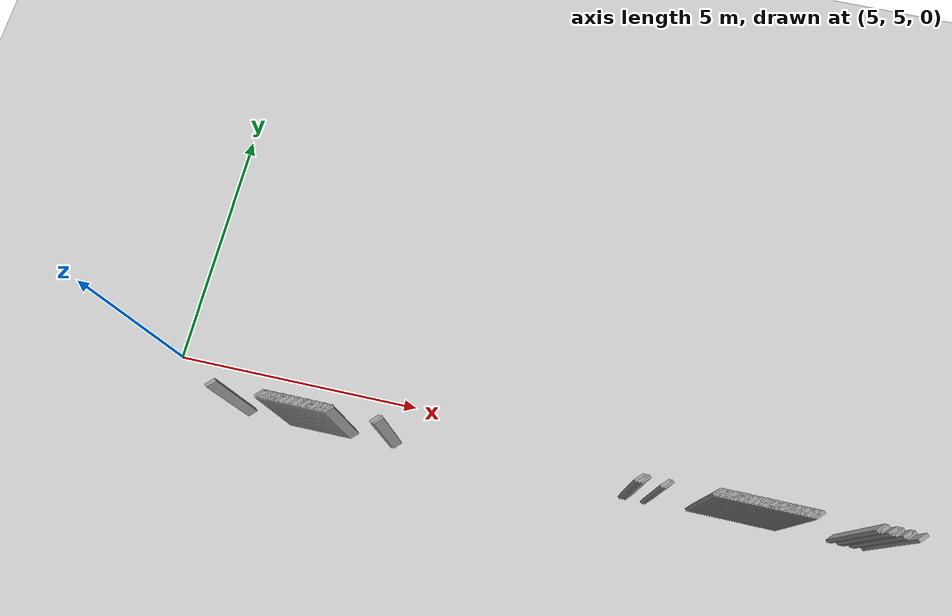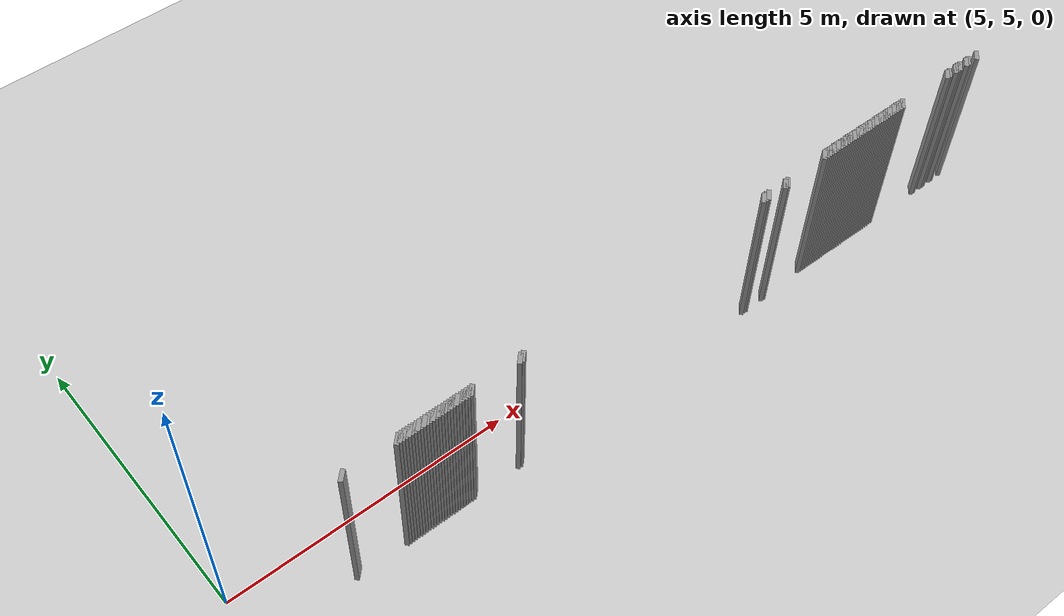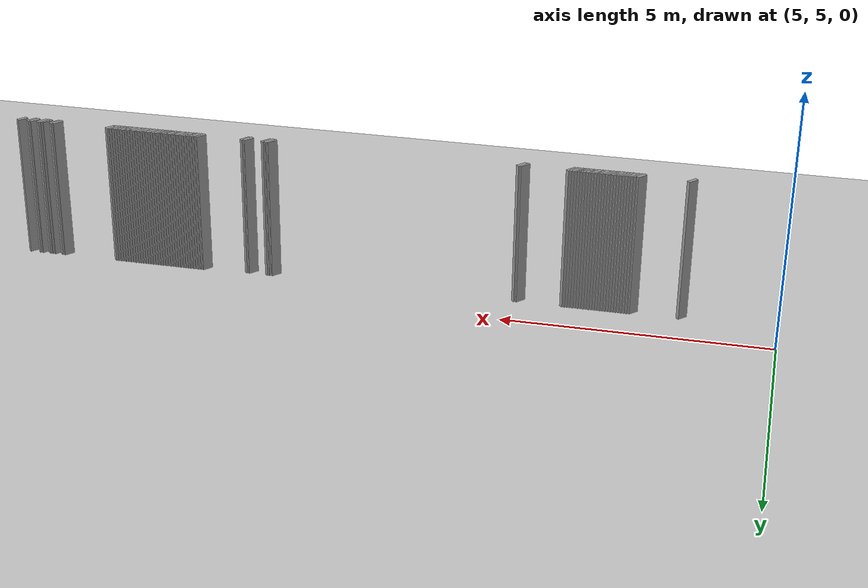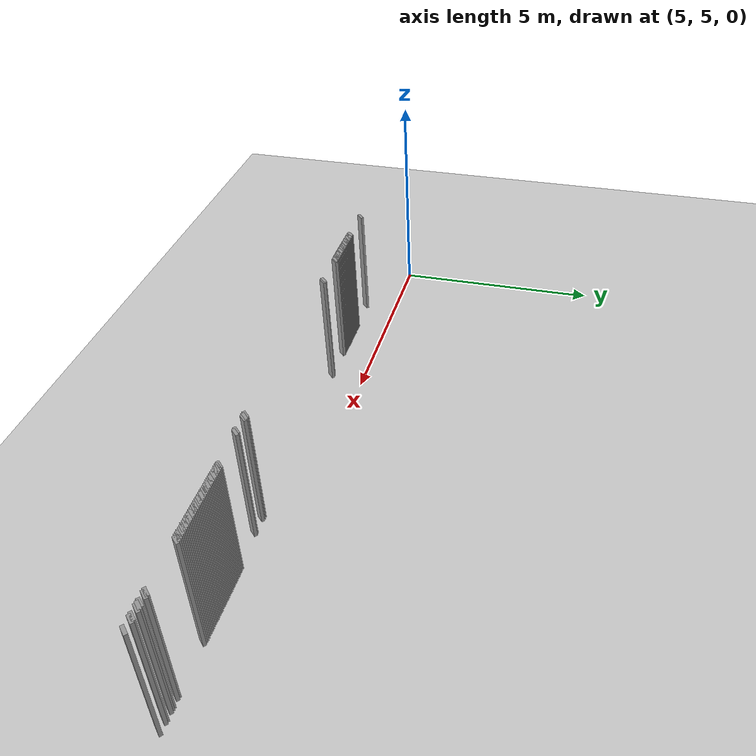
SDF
<sdf version="1.5">
 <world name="default">
  <include><uri>model://ground_plane</uri></include>
  <include><uri>model://sun</uri></include>
  <model name="grey_wall_2333">
   <static>1</static>
   <link name="link">
    <pose>15.8 4.25  1.4 0 0 -0.785398163397</pose>
    <collision name="collision"><geometry><box><size>0.0707106781187 .2  2.8</size></box></geometry></collision>
    <visual name="visual">
     <cast_shadows>0</cast_shadows>
     <geometry><box><size>0.0707106781187 .2  2.8</size></box></geometry>
     <material>
      <script>
       <uri>model://grey_wall/materials/scripts</uri>
       <uri>model://grey_wall/materials/textures</uri>
       <name>vrc/grey_wall</name>
      </script>
     </material>
    </visual>
   </link>
  </model>
  <model name="grey_wall_2334">
   <static>1</static>
   <link name="link">
    <pose>15.85 4.25  1.4 0 0 -0.785398163397</pose>
    <collision name="collision"><geometry><box><size>0.0707106781187 .2  2.8</size></box></geometry></collision>
    <visual name="visual">
     <cast_shadows>0</cast_shadows>
     <geometry><box><size>0.0707106781187 .2  2.8</size></box></geometry>
     <material>
      <script>
       <uri>model://grey_wall/materials/scripts</uri>
       <uri>model://grey_wall/materials/textures</uri>
       <name>vrc/grey_wall</name>
      </script>
     </material>
    </visual>
   </link>
  </model>
  <model name="grey_wall_2335">
   <static>1</static>
   <link name="link">
    <pose>15.9 4.25  1.4 0 0 -0.785398163397</pose>
    <collision name="collision"><geometry><box><size>0.0707106781187 .2  2.8</size></box></geometry></collision>
    <visual name="visual">
     <cast_shadows>0</cast_shadows>
     <geometry><box><size>0.0707106781187 .2  2.8</size></box></geometry>
     <material>
      <script>
       <uri>model://grey_wall/materials/scripts</uri>
       <uri>model://grey_wall/materials/textures</uri>
       <name>vrc/grey_wall</name>
      </script>
     </material>
    </visual>
   </link>
  </model>
  <model name="grey_wall_2336">
   <static>1</static>
   <link name="link">
    <pose>15.95 4.25  1.4 0 0 -0.785398163397</pose>
    <collision name="collision"><geometry><box><size>0.0707106781187 .2  2.8</size></box></geometry></collision>
    <visual name="visual">
     <cast_shadows>0</cast_shadows>
     <geometry><box><size>0.0707106781187 .2  2.8</size></box></geometry>
     <material>
      <script>
       <uri>model://grey_wall/materials/scripts</uri>
       <uri>model://grey_wall/materials/textures</uri>
       <name>vrc/grey_wall</name>
      </script>
     </material>
    </visual>
   </link>
  </model>
  <model name="grey_wall_2337">
   <static>1</static>
   <link name="link">
    <pose>16.0 4.25  1.4 0 0 -0.785398163397</pose>
    <collision name="collision"><geometry><box><size>0.0707106781187 .2  2.8</size></box></geometry></collision>
    <visual name="visual">
     <cast_shadows>0</cast_shadows>
     <geometry><box><size>0.0707106781187 .2  2.8</size></box></geometry>
     <material>
      <script>
       <uri>model://grey_wall/materials/scripts</uri>
       <uri>model://grey_wall/materials/textures</uri>
       <name>vrc/grey_wall</name>
      </script>
     </material>
    </visual>
   </link>
  </model>
  <model name="grey_wall_2338">
   <static>1</static>
   <link name="link">
    <pose>16.05 4.25  1.4 0 0 -0.785398163397</pose>
    <collision name="collision"><geometry><box><size>0.0707106781187 .2  2.8</size></box></geometry></collision>
    <visual name="visual">
     <cast_shadows>0</cast_shadows>
     <geometry><box><size>0.0707106781187 .2  2.8</size></box></geometry>
     <material>
      <script>
       <uri>model://grey_wall/materials/scripts</uri>
       <uri>model://grey_wall/materials/textures</uri>
       <name>vrc/grey_wall</name>
      </script>
     </material>
    </visual>
   </link>
  </model>
  <model name="grey_wall_2339">
   <static>1</static>
   <link name="link">
    <pose>16.1 4.25  1.4 0 0 -0.785398163397</pose>
    <collision name="collision"><geometry><box><size>0.0707106781187 .2  2.8</size></box></geometry></collision>
    <visual name="visual">
     <cast_shadows>0</cast_shadows>
     <geometry><box><size>0.0707106781187 .2  2.8</size></box></geometry>
     <material>
      <script>
       <uri>model://grey_wall/materials/scripts</uri>
       <uri>model://grey_wall/materials/textures</uri>
       <name>vrc/grey_wall</name>
      </script>
     </material>
    </visual>
   </link>
  </model>
  <model name="grey_wall_2340">
   <static>1</static>
   <link name="link">
    <pose>16.15 4.25  1.4 0 0 -0.785398163397</pose>
    <collision name="collision"><geometry><box><size>0.0707106781187 .2  2.8</size></box></geometry></collision>
    <visual name="visual">
     <cast_shadows>0</cast_shadows>
     <geometry><box><size>0.0707106781187 .2  2.8</size></box></geometry>
     <material>
      <script>
       <uri>model://grey_wall/materials/scripts</uri>
       <uri>model://grey_wall/materials/textures</uri>
       <name>vrc/grey_wall</name>
      </script>
     </material>
    </visual>
   </link>
  </model>
  <model name="grey_wall_2341">
   <static>1</static>
   <link name="link">
    <pose>16.2 4.25  1.4 0 0 -0.785398163397</pose>
    <collision name="collision"><geometry><box><size>0.0707106781187 .2  2.8</size></box></geometry></collision>
    <visual name="visual">
     <cast_shadows>0</cast_shadows>
     <geometry><box><size>0.0707106781187 .2  2.8</size></box></geometry>
     <material>
      <script>
       <uri>model://grey_wall/materials/scripts</uri>
       <uri>model://grey_wall/materials/textures</uri>
       <name>vrc/grey_wall</name>
      </script>
     </material>
    </visual>
   </link>
  </model>
  <model name="grey_wall_2342">
   <static>1</static>
   <link name="link">
    <pose>16.25 4.25  1.4 0 0 -0.785398163397</pose>
    <collision name="collision"><geometry><box><size>0.0707106781187 .2  2.8</size></box></geometry></collision>
    <visual name="visual">
     <cast_shadows>0</cast_shadows>
     <geometry><box><size>0.0707106781187 .2  2.8</size></box></geometry>
     <material>
      <script>
       <uri>model://grey_wall/materials/scripts</uri>
       <uri>model://grey_wall/materials/textures</uri>
       <name>vrc/grey_wall</name>
      </script>
     </material>
    </visual>
   </link>
  </model>
  <model name="grey_wall_2343">
   <static>1</static>
   <link name="link">
    <pose>16.3 4.25  1.4 0 0 -0.785398163397</pose>
    <collision name="collision"><geometry><box><size>0.0707106781187 .2  2.8</size></box></geometry></collision>
    <visual name="visual">
     <cast_shadows>0</cast_shadows>
     <geometry><box><size>0.0707106781187 .2  2.8</size></box></geometry>
     <material>
      <script>
       <uri>model://grey_wall/materials/scripts</uri>
       <uri>model://grey_wall/materials/textures</uri>
       <name>vrc/grey_wall</name>
      </script>
     </material>
    </visual>
   </link>
  </model>
  <model name="grey_wall_2344">
   <static>1</static>
   <link name="link">
    <pose>16.35 4.25  1.4 0 0 -0.785398163397</pose>
    <collision name="collision"><geometry><box><size>0.0707106781187 .2  2.8</size></box></geometry></collision>
    <visual name="visual">
     <cast_shadows>0</cast_shadows>
     <geometry><box><size>0.0707106781187 .2  2.8</size></box></geometry>
     <material>
      <script>
       <uri>model://grey_wall/materials/scripts</uri>
       <uri>model://grey_wall/materials/textures</uri>
       <name>vrc/grey_wall</name>
      </script>
     </material>
    </visual>
   </link>
  </model>
  <model name="grey_wall_2345">
   <static>1</static>
   <link name="link">
    <pose>16.4 4.25  1.4 0 0 -0.785398163397</pose>
    <collision name="collision"><geometry><box><size>0.0707106781187 .2  2.8</size></box></geometry></collision>
    <visual name="visual">
     <cast_shadows>0</cast_shadows>
     <geometry><box><size>0.0707106781187 .2  2.8</size></box></geometry>
     <material>
      <script>
       <uri>model://grey_wall/materials/scripts</uri>
       <uri>model://grey_wall/materials/textures</uri>
       <name>vrc/grey_wall</name>
      </script>
     </material>
    </visual>
   </link>
  </model>
  <model name="grey_wall_2346">
   <static>1</static>
   <link name="link">
    <pose>16.45 4.25  1.4 0 0 -0.785398163397</pose>
    <collision name="collision"><geometry><box><size>0.0707106781187 .2  2.8</size></box></geometry></collision>
    <visual name="visual">
     <cast_shadows>0</cast_shadows>
     <geometry><box><size>0.0707106781187 .2  2.8</size></box></geometry>
     <material>
      <script>
       <uri>model://grey_wall/materials/scripts</uri>
       <uri>model://grey_wall/materials/textures</uri>
       <name>vrc/grey_wall</name>
      </script>
     </material>
    </visual>
   </link>
  </model>
  <model name="grey_wall_2347">
   <static>1</static>
   <link name="link">
    <pose>16.5 4.25  1.4 0 0 -0.785398163397</pose>
    <collision name="collision"><geometry><box><size>0.0707106781187 .2  2.8</size></box></geometry></collision>
    <visual name="visual">
     <cast_shadows>0</cast_shadows>
     <geometry><box><size>0.0707106781187 .2  2.8</size></box></geometry>
     <material>
      <script>
       <uri>model://grey_wall/materials/scripts</uri>
       <uri>model://grey_wall/materials/textures</uri>
       <name>vrc/grey_wall</name>
      </script>
     </material>
    </visual>
   </link>
  </model>
  <model name="grey_wall_2348">
   <static>1</static>
   <link name="link">
    <pose>16.55 4.25  1.4 0 0 -0.785398163397</pose>
    <collision name="collision"><geometry><box><size>0.0707106781187 .2  2.8</size></box></geometry></collision>
    <visual name="visual">
     <cast_shadows>0</cast_shadows>
     <geometry><box><size>0.0707106781187 .2  2.8</size></box></geometry>
     <material>
      <script>
       <uri>model://grey_wall/materials/scripts</uri>
       <uri>model://grey_wall/materials/textures</uri>
       <name>vrc/grey_wall</name>
      </script>
     </material>
    </visual>
   </link>
  </model>
  <model name="grey_wall_2349">
   <static>1</static>
   <link name="link">
    <pose>16.6 4.25  1.4 0 0 -0.785398163397</pose>
    <collision name="collision"><geometry><box><size>0.0707106781187 .2  2.8</size></box></geometry></collision>
    <visual name="visual">
     <cast_shadows>0</cast_shadows>
     <geometry><box><size>0.0707106781187 .2  2.8</size></box></geometry>
     <material>
      <script>
       <uri>model://grey_wall/materials/scripts</uri>
       <uri>model://grey_wall/materials/textures</uri>
       <name>vrc/grey_wall</name>
      </script>
     </material>
    </visual>
   </link>
  </model>
  <model name="grey_wall_2350">
   <static>1</static>
   <link name="link">
    <pose>16.65 4.25  1.4 0 0 -0.785398163397</pose>
    <collision name="collision"><geometry><box><size>0.0707106781187 .2  2.8</size></box></geometry></collision>
    <visual name="visual">
     <cast_shadows>0</cast_shadows>
     <geometry><box><size>0.0707106781187 .2  2.8</size></box></geometry>
     <material>
      <script>
       <uri>model://grey_wall/materials/scripts</uri>
       <uri>model://grey_wall/materials/textures</uri>
       <name>vrc/grey_wall</name>
      </script>
     </material>
    </visual>
   </link>
  </model>
  <model name="grey_wall_2351">
   <static>1</static>
   <link name="link">
    <pose>16.7 4.25  1.4 0 0 -0.785398163397</pose>
    <collision name="collision"><geometry><box><size>0.0707106781187 .2  2.8</size></box></geometry></collision>
    <visual name="visual">
     <cast_shadows>0</cast_shadows>
     <geometry><box><size>0.0707106781187 .2  2.8</size></box></geometry>
     <material>
      <script>
       <uri>model://grey_wall/materials/scripts</uri>
       <uri>model://grey_wall/materials/textures</uri>
       <name>vrc/grey_wall</name>
      </script>
     </material>
    </visual>
   </link>
  </model>
  <model name="grey_wall_2352">
   <static>1</static>
   <link name="link">
    <pose>16.75 4.25  1.4 0 0 -0.785398163397</pose>
    <collision name="collision"><geometry><box><size>0.0707106781187 .2  2.8</size></box></geometry></collision>
    <visual name="visual">
     <cast_shadows>0</cast_shadows>
     <geometry><box><size>0.0707106781187 .2  2.8</size></box></geometry>
     <material>
      <script>
       <uri>model://grey_wall/materials/scripts</uri>
       <uri>model://grey_wall/materials/textures</uri>
       <name>vrc/grey_wall</name>
      </script>
     </material>
    </visual>
   </link>
  </model>
  <model name="grey_wall_2353">
   <static>1</static>
   <link name="link">
    <pose>16.8 4.25  1.4 0 0 -0.785398163397</pose>
    <collision name="collision"><geometry><box><size>0.0707106781187 .2  2.8</size></box></geometry></collision>
    <visual name="visual">
     <cast_shadows>0</cast_shadows>
     <geometry><box><size>0.0707106781187 .2  2.8</size></box></geometry>
     <material>
      <script>
       <uri>model://grey_wall/materials/scripts</uri>
       <uri>model://grey_wall/materials/textures</uri>
       <name>vrc/grey_wall</name>
      </script>
     </material>
    </visual>
   </link>
  </model>
  <model name="grey_wall_2354">
   <static>1</static>
   <link name="link">
    <pose>16.85 4.25  1.4 0 0 -0.785398163397</pose>
    <collision name="collision"><geometry><box><size>0.0707106781187 .2  2.8</size></box></geometry></collision>
    <visual name="visual">
     <cast_shadows>0</cast_shadows>
     <geometry><box><size>0.0707106781187 .2  2.8</size></box></geometry>
     <material>
      <script>
       <uri>model://grey_wall/materials/scripts</uri>
       <uri>model://grey_wall/materials/textures</uri>
       <name>vrc/grey_wall</name>
      </script>
     </material>
    </visual>
   </link>
  </model>
  <model name="grey_wall_2355">
   <static>1</static>
   <link name="link">
    <pose>16.9 4.25  1.4 0 0 -0.785398163397</pose>
    <collision name="collision"><geometry><box><size>0.0707106781187 .2  2.8</size></box></geometry></collision>
    <visual name="visual">
     <cast_shadows>0</cast_shadows>
     <geometry><box><size>0.0707106781187 .2  2.8</size></box></geometry>
     <material>
      <script>
       <uri>model://grey_wall/materials/scripts</uri>
       <uri>model://grey_wall/materials/textures</uri>
       <name>vrc/grey_wall</name>
      </script>
     </material>
    </visual>
   </link>
  </model>
  <model name="grey_wall_2356">
   <static>1</static>
   <link name="link">
    <pose>16.95 4.25  1.4 0 0 -0.785398163397</pose>
    <collision name="collision"><geometry><box><size>0.0707106781187 .2  2.8</size></box></geometry></collision>
    <visual name="visual">
     <cast_shadows>0</cast_shadows>
     <geometry><box><size>0.0707106781187 .2  2.8</size></box></geometry>
     <material>
      <script>
       <uri>model://grey_wall/materials/scripts</uri>
       <uri>model://grey_wall/materials/textures</uri>
       <name>vrc/grey_wall</name>
      </script>
     </material>
    </visual>
   </link>
  </model>
  <model name="grey_wall_2357">
   <static>1</static>
   <link name="link">
    <pose>17.0 4.25  1.4 0 0 -0.785398163397</pose>
    <collision name="collision"><geometry><box><size>0.0707106781187 .2  2.8</size></box></geometry></collision>
    <visual name="visual">
     <cast_shadows>0</cast_shadows>
     <geometry><box><size>0.0707106781187 .2  2.8</size></box></geometry>
     <material>
      <script>
       <uri>model://grey_wall/materials/scripts</uri>
       <uri>model://grey_wall/materials/textures</uri>
       <name>vrc/grey_wall</name>
      </script>
     </material>
    </visual>
   </link>
  </model>
  <model name="grey_wall_2358">
   <static>1</static>
   <link name="link">
    <pose>17.05 4.25  1.4 0 0 -0.785398163397</pose>
    <collision name="collision"><geometry><box><size>0.0707106781187 .2  2.8</size></box></geometry></collision>
    <visual name="visual">
     <cast_shadows>0</cast_shadows>
     <geometry><box><size>0.0707106781187 .2  2.8</size></box></geometry>
     <material>
      <script>
       <uri>model://grey_wall/materials/scripts</uri>
       <uri>model://grey_wall/materials/textures</uri>
       <name>vrc/grey_wall</name>
      </script>
     </material>
    </visual>
   </link>
  </model>
  <model name="grey_wall_2359">
   <static>1</static>
   <link name="link">
    <pose>17.1 4.25  1.4 0 0 -0.785398163397</pose>
    <collision name="collision"><geometry><box><size>0.0707106781187 .2  2.8</size></box></geometry></collision>
    <visual name="visual">
     <cast_shadows>0</cast_shadows>
     <geometry><box><size>0.0707106781187 .2  2.8</size></box></geometry>
     <material>
      <script>
       <uri>model://grey_wall/materials/scripts</uri>
       <uri>model://grey_wall/materials/textures</uri>
       <name>vrc/grey_wall</name>
      </script>
     </material>
    </visual>
   </link>
  </model>
  <model name="grey_wall_2360">
   <static>1</static>
   <link name="link">
    <pose>17.15 4.25  1.4 0 0 -0.785398163397</pose>
    <collision name="collision"><geometry><box><size>0.0707106781187 .2  2.8</size></box></geometry></collision>
    <visual name="visual">
     <cast_shadows>0</cast_shadows>
     <geometry><box><size>0.0707106781187 .2  2.8</size></box></geometry>
     <material>
      <script>
       <uri>model://grey_wall/materials/scripts</uri>
       <uri>model://grey_wall/materials/textures</uri>
       <name>vrc/grey_wall</name>
      </script>
     </material>
    </visual>
   </link>
  </model>
  <model name="grey_wall_2361">
   <static>1</static>
   <link name="link">
    <pose>17.2 4.25  1.4 0 0 -0.785398163397</pose>
    <collision name="collision"><geometry><box><size>0.0707106781187 .2  2.8</size></box></geometry></collision>
    <visual name="visual">
     <cast_shadows>0</cast_shadows>
     <geometry><box><size>0.0707106781187 .2  2.8</size></box></geometry>
     <material>
      <script>
       <uri>model://grey_wall/materials/scripts</uri>
       <uri>model://grey_wall/materials/textures</uri>
       <name>vrc/grey_wall</name>
      </script>
     </material>
    </visual>
   </link>
  </model>
  <model name="grey_wall_2362">
   <static>1</static>
   <link name="link">
    <pose>17.25 4.25  1.4 0 0 -0.785398163397</pose>
    <collision name="collision"><geometry><box><size>0.0707106781187 .2  2.8</size></box></geometry></collision>
    <visual name="visual">
     <cast_shadows>0</cast_shadows>
     <geometry><box><size>0.0707106781187 .2  2.8</size></box></geometry>
     <material>
      <script>
       <uri>model://grey_wall/materials/scripts</uri>
       <uri>model://grey_wall/materials/textures</uri>
       <name>vrc/grey_wall</name>
      </script>
     </material>
    </visual>
   </link>
  </model>
  <model name="grey_wall_2363">
   <static>1</static>
   <link name="link">
    <pose>17.3 4.25  1.4 0 0 -0.785398163397</pose>
    <collision name="collision"><geometry><box><size>0.0707106781187 .2  2.8</size></box></geometry></collision>
    <visual name="visual">
     <cast_shadows>0</cast_shadows>
     <geometry><box><size>0.0707106781187 .2  2.8</size></box></geometry>
     <material>
      <script>
       <uri>model://grey_wall/materials/scripts</uri>
       <uri>model://grey_wall/materials/textures</uri>
       <name>vrc/grey_wall</name>
      </script>
     </material>
    </visual>
   </link>
  </model>
  <model name="grey_wall_2364">
   <static>1</static>
   <link name="link">
    <pose>17.35 4.25  1.4 0 0 -0.785398163397</pose>
    <collision name="collision"><geometry><box><size>0.0707106781187 .2  2.8</size></box></geometry></collision>
    <visual name="visual">
     <cast_shadows>0</cast_shadows>
     <geometry><box><size>0.0707106781187 .2  2.8</size></box></geometry>
     <material>
      <script>
       <uri>model://grey_wall/materials/scripts</uri>
       <uri>model://grey_wall/materials/textures</uri>
       <name>vrc/grey_wall</name>
      </script>
     </material>
    </visual>
   </link>
  </model>
  <model name="grey_wall_2365">
   <static>1</static>
   <link name="link">
    <pose>17.4 4.25  1.4 0 0 -0.785398163397</pose>
    <collision name="collision"><geometry><box><size>0.0707106781187 .2  2.8</size></box></geometry></collision>
    <visual name="visual">
     <cast_shadows>0</cast_shadows>
     <geometry><box><size>0.0707106781187 .2  2.8</size></box></geometry>
     <material>
      <script>
       <uri>model://grey_wall/materials/scripts</uri>
       <uri>model://grey_wall/materials/textures</uri>
       <name>vrc/grey_wall</name>
      </script>
     </material>
    </visual>
   </link>
  </model>
  <model name="grey_wall_2366">
   <static>1</static>
   <link name="link">
    <pose>17.45 4.25  1.4 0 0 -0.785398163397</pose>
    <collision name="collision"><geometry><box><size>0.0707106781187 .2  2.8</size></box></geometry></collision>
    <visual name="visual">
     <cast_shadows>0</cast_shadows>
     <geometry><box><size>0.0707106781187 .2  2.8</size></box></geometry>
     <material>
      <script>
       <uri>model://grey_wall/materials/scripts</uri>
       <uri>model://grey_wall/materials/textures</uri>
       <name>vrc/grey_wall</name>
      </script>
     </material>
    </visual>
   </link>
  </model>
  <model name="grey_wall_2367">
   <static>1</static>
   <link name="link">
    <pose>17.5 4.25  1.4 0 0 -0.785398163397</pose>
    <collision name="collision"><geometry><box><size>0.0707106781187 .2  2.8</size></box></geometry></collision>
    <visual name="visual">
     <cast_shadows>0</cast_shadows>
     <geometry><box><size>0.0707106781187 .2  2.8</size></box></geometry>
     <material>
      <script>
       <uri>model://grey_wall/materials/scripts</uri>
       <uri>model://grey_wall/materials/textures</uri>
       <name>vrc/grey_wall</name>
      </script>
     </material>
    </visual>
   </link>
  </model>
  <model name="grey_wall_2368">
   <static>1</static>
   <link name="link">
    <pose>17.55 4.25  1.4 0 0 -0.785398163397</pose>
    <collision name="collision"><geometry><box><size>0.0707106781187 .2  2.8</size></box></geometry></collision>
    <visual name="visual">
     <cast_shadows>0</cast_shadows>
     <geometry><box><size>0.0707106781187 .2  2.8</size></box></geometry>
     <material>
      <script>
       <uri>model://grey_wall/materials/scripts</uri>
       <uri>model://grey_wall/materials/textures</uri>
       <name>vrc/grey_wall</name>
      </script>
     </material>
    </visual>
   </link>
  </model>
  <model name="grey_wall_2369">
   <static>1</static>
   <link name="link">
    <pose>18.6 4.25  1.4 0 0 -0.785398163397</pose>
    <collision name="collision"><geometry><box><size>0.0707106781187 .2  2.8</size></box></geometry></collision>
    <visual name="visual">
     <cast_shadows>0</cast_shadows>
     <geometry><box><size>0.0707106781187 .2  2.8</size></box></geometry>
     <material>
      <script>
       <uri>model://grey_wall/materials/scripts</uri>
       <uri>model://grey_wall/materials/textures</uri>
       <name>vrc/grey_wall</name>
      </script>
     </material>
    </visual>
   </link>
  </model>
  <model name="grey_wall_2370">
   <static>1</static>
   <link name="link">
    <pose>18.65 4.25  1.4 0 0 -0.785398163397</pose>
    <collision name="collision"><geometry><box><size>0.0707106781187 .2  2.8</size></box></geometry></collision>
    <visual name="visual">
     <cast_shadows>0</cast_shadows>
     <geometry><box><size>0.0707106781187 .2  2.8</size></box></geometry>
     <material>
      <script>
       <uri>model://grey_wall/materials/scripts</uri>
       <uri>model://grey_wall/materials/textures</uri>
       <name>vrc/grey_wall</name>
      </script>
     </material>
    </visual>
   </link>
  </model>
  <model name="grey_wall_2371">
   <static>1</static>
   <link name="link">
    <pose>18.8 4.25  1.4 0 0 -0.785398163397</pose>
    <collision name="collision"><geometry><box><size>0.0707106781187 .2  2.8</size></box></geometry></collision>
    <visual name="visual">
     <cast_shadows>0</cast_shadows>
     <geometry><box><size>0.0707106781187 .2  2.8</size></box></geometry>
     <material>
      <script>
       <uri>model://grey_wall/materials/scripts</uri>
       <uri>model://grey_wall/materials/textures</uri>
       <name>vrc/grey_wall</name>
      </script>
     </material>
    </visual>
   </link>
  </model>
  <model name="grey_wall_2372">
   <static>1</static>
   <link name="link">
    <pose>18.85 4.25  1.4 0 0 -0.785398163397</pose>
    <collision name="collision"><geometry><box><size>0.0707106781187 .2  2.8</size></box></geometry></collision>
    <visual name="visual">
     <cast_shadows>0</cast_shadows>
     <geometry><box><size>0.0707106781187 .2  2.8</size></box></geometry>
     <material>
      <script>
       <uri>model://grey_wall/materials/scripts</uri>
       <uri>model://grey_wall/materials/textures</uri>
       <name>vrc/grey_wall</name>
      </script>
     </material>
    </visual>
   </link>
  </model>
  <model name="grey_wall_2373">
   <static>1</static>
   <link name="link">
    <pose>18.9 4.25  1.4 0 0 -0.785398163397</pose>
    <collision name="collision"><geometry><box><size>0.0707106781187 .2  2.8</size></box></geometry></collision>
    <visual name="visual">
     <cast_shadows>0</cast_shadows>
     <geometry><box><size>0.0707106781187 .2  2.8</size></box></geometry>
     <material>
      <script>
       <uri>model://grey_wall/materials/scripts</uri>
       <uri>model://grey_wall/materials/textures</uri>
       <name>vrc/grey_wall</name>
      </script>
     </material>
    </visual>
   </link>
  </model>
  <model name="grey_wall_2374">
   <static>1</static>
   <link name="link">
    <pose>19.05 4.25  1.4 0 0 -0.785398163397</pose>
    <collision name="collision"><geometry><box><size>0.0707106781187 .2  2.8</size></box></geometry></collision>
    <visual name="visual">
     <cast_shadows>0</cast_shadows>
     <geometry><box><size>0.0707106781187 .2  2.8</size></box></geometry>
     <material>
      <script>
       <uri>model://grey_wall/materials/scripts</uri>
       <uri>model://grey_wall/materials/textures</uri>
       <name>vrc/grey_wall</name>
      </script>
     </material>
    </visual>
   </link>
  </model>
  <model name="grey_wall_2375">
   <static>1</static>
   <link name="link">
    <pose>19.1 4.25  1.4 0 0 -0.785398163397</pose>
    <collision name="collision"><geometry><box><size>0.0707106781187 .2  2.8</size></box></geometry></collision>
    <visual name="visual">
     <cast_shadows>0</cast_shadows>
     <geometry><box><size>0.0707106781187 .2  2.8</size></box></geometry>
     <material>
      <script>
       <uri>model://grey_wall/materials/scripts</uri>
       <uri>model://grey_wall/materials/textures</uri>
       <name>vrc/grey_wall</name>
      </script>
     </material>
    </visual>
   </link>
  </model>
  <model name="grey_wall_2376">
   <static>1</static>
   <link name="link">
    <pose>19.3 4.25  1.4 0 0 -0.785398163397</pose>
    <collision name="collision"><geometry><box><size>0.0707106781187 .2  2.8</size></box></geometry></collision>
    <visual name="visual">
     <cast_shadows>0</cast_shadows>
     <geometry><box><size>0.0707106781187 .2  2.8</size></box></geometry>
     <material>
      <script>
       <uri>model://grey_wall/materials/scripts</uri>
       <uri>model://grey_wall/materials/textures</uri>
       <name>vrc/grey_wall</name>
      </script>
     </material>
    </visual>
   </link>
  </model>
  <model name="grey_wall_2377">
   <static>1</static>
   <link name="link">
    <pose>6.75 4.2  1.4 0 0 -0.785398163397</pose>
    <collision name="collision"><geometry><box><size>0.0707106781187 .2  2.8</size></box></geometry></collision>
    <visual name="visual">
     <cast_shadows>0</cast_shadows>
     <geometry><box><size>0.0707106781187 .2  2.8</size></box></geometry>
     <material>
      <script>
       <uri>model://grey_wall/materials/scripts</uri>
       <uri>model://grey_wall/materials/textures</uri>
       <name>vrc/grey_wall</name>
      </script>
     </material>
    </visual>
   </link>
  </model>
  <model name="grey_wall_2378">
   <static>1</static>
   <link name="link">
    <pose>7.65 4.2  1.4 0 0 -0.785398163397</pose>
    <collision name="collision"><geometry><box><size>0.0707106781187 .2  2.8</size></box></geometry></collision>
    <visual name="visual">
     <cast_shadows>0</cast_shadows>
     <geometry><box><size>0.0707106781187 .2  2.8</size></box></geometry>
     <material>
      <script>
       <uri>model://grey_wall/materials/scripts</uri>
       <uri>model://grey_wall/materials/textures</uri>
       <name>vrc/grey_wall</name>
      </script>
     </material>
    </visual>
   </link>
  </model>
  <model name="grey_wall_2379">
   <static>1</static>
   <link name="link">
    <pose>7.7 4.2  1.4 0 0 -0.785398163397</pose>
    <collision name="collision"><geometry><box><size>0.0707106781187 .2  2.8</size></box></geometry></collision>
    <visual name="visual">
     <cast_shadows>0</cast_shadows>
     <geometry><box><size>0.0707106781187 .2  2.8</size></box></geometry>
     <material>
      <script>
       <uri>model://grey_wall/materials/scripts</uri>
       <uri>model://grey_wall/materials/textures</uri>
       <name>vrc/grey_wall</name>
      </script>
     </material>
    </visual>
   </link>
  </model>
  <model name="grey_wall_2380">
   <static>1</static>
   <link name="link">
    <pose>7.75 4.2  1.4 0 0 -0.785398163397</pose>
    <collision name="collision"><geometry><box><size>0.0707106781187 .2  2.8</size></box></geometry></collision>
    <visual name="visual">
     <cast_shadows>0</cast_shadows>
     <geometry><box><size>0.0707106781187 .2  2.8</size></box></geometry>
     <material>
      <script>
       <uri>model://grey_wall/materials/scripts</uri>
       <uri>model://grey_wall/materials/textures</uri>
       <name>vrc/grey_wall</name>
      </script>
     </material>
    </visual>
   </link>
  </model>
  <model name="grey_wall_2381">
   <static>1</static>
   <link name="link">
    <pose>7.8 4.2  1.4 0 0 -0.785398163397</pose>
    <collision name="collision"><geometry><box><size>0.0707106781187 .2  2.8</size></box></geometry></collision>
    <visual name="visual">
     <cast_shadows>0</cast_shadows>
     <geometry><box><size>0.0707106781187 .2  2.8</size></box></geometry>
     <material>
      <script>
       <uri>model://grey_wall/materials/scripts</uri>
       <uri>model://grey_wall/materials/textures</uri>
       <name>vrc/grey_wall</name>
      </script>
     </material>
    </visual>
   </link>
  </model>
  <model name="grey_wall_2382">
   <static>1</static>
   <link name="link">
    <pose>7.85 4.2  1.4 0 0 -0.785398163397</pose>
    <collision name="collision"><geometry><box><size>0.0707106781187 .2  2.8</size></box></geometry></collision>
    <visual name="visual">
     <cast_shadows>0</cast_shadows>
     <geometry><box><size>0.0707106781187 .2  2.8</size></box></geometry>
     <material>
      <script>
       <uri>model://grey_wall/materials/scripts</uri>
       <uri>model://grey_wall/materials/textures</uri>
       <name>vrc/grey_wall</name>
      </script>
     </material>
    </visual>
   </link>
  </model>
  <model name="grey_wall_2383">
   <static>1</static>
   <link name="link">
    <pose>7.9 4.2  1.4 0 0 -0.785398163397</pose>
    <collision name="collision"><geometry><box><size>0.0707106781187 .2  2.8</size></box></geometry></collision>
    <visual name="visual">
     <cast_shadows>0</cast_shadows>
     <geometry><box><size>0.0707106781187 .2  2.8</size></box></geometry>
     <material>
      <script>
       <uri>model://grey_wall/materials/scripts</uri>
       <uri>model://grey_wall/materials/textures</uri>
       <name>vrc/grey_wall</name>
      </script>
     </material>
    </visual>
   </link>
  </model>
  <model name="grey_wall_2384">
   <static>1</static>
   <link name="link">
    <pose>7.95 4.2  1.4 0 0 -0.785398163397</pose>
    <collision name="collision"><geometry><box><size>0.0707106781187 .2  2.8</size></box></geometry></collision>
    <visual name="visual">
     <cast_shadows>0</cast_shadows>
     <geometry><box><size>0.0707106781187 .2  2.8</size></box></geometry>
     <material>
      <script>
       <uri>model://grey_wall/materials/scripts</uri>
       <uri>model://grey_wall/materials/textures</uri>
       <name>vrc/grey_wall</name>
      </script>
     </material>
    </visual>
   </link>
  </model>
  <model name="grey_wall_2385">
   <static>1</static>
   <link name="link">
    <pose>8.0 4.2  1.4 0 0 -0.785398163397</pose>
    <collision name="collision"><geometry><box><size>0.0707106781187 .2  2.8</size></box></geometry></collision>
    <visual name="visual">
     <cast_shadows>0</cast_shadows>
     <geometry><box><size>0.0707106781187 .2  2.8</size></box></geometry>
     <material>
      <script>
       <uri>model://grey_wall/materials/scripts</uri>
       <uri>model://grey_wall/materials/textures</uri>
       <name>vrc/grey_wall</name>
      </script>
     </material>
    </visual>
   </link>
  </model>
  <model name="grey_wall_2386">
   <static>1</static>
   <link name="link">
    <pose>8.05 4.2  1.4 0 0 -0.785398163397</pose>
    <collision name="collision"><geometry><box><size>0.0707106781187 .2  2.8</size></box></geometry></collision>
    <visual name="visual">
     <cast_shadows>0</cast_shadows>
     <geometry><box><size>0.0707106781187 .2  2.8</size></box></geometry>
     <material>
      <script>
       <uri>model://grey_wall/materials/scripts</uri>
       <uri>model://grey_wall/materials/textures</uri>
       <name>vrc/grey_wall</name>
      </script>
     </material>
    </visual>
   </link>
  </model>
  <model name="grey_wall_2387">
   <static>1</static>
   <link name="link">
    <pose>8.1 4.2  1.4 0 0 -0.785398163397</pose>
    <collision name="collision"><geometry><box><size>0.0707106781187 .2  2.8</size></box></geometry></collision>
    <visual name="visual">
     <cast_shadows>0</cast_shadows>
     <geometry><box><size>0.0707106781187 .2  2.8</size></box></geometry>
     <material>
      <script>
       <uri>model://grey_wall/materials/scripts</uri>
       <uri>model://grey_wall/materials/textures</uri>
       <name>vrc/grey_wall</name>
      </script>
     </material>
    </visual>
   </link>
  </model>
  <model name="grey_wall_2388">
   <static>1</static>
   <link name="link">
    <pose>8.15 4.2  1.4 0 0 -0.785398163397</pose>
    <collision name="collision"><geometry><box><size>0.0707106781187 .2  2.8</size></box></geometry></collision>
    <visual name="visual">
     <cast_shadows>0</cast_shadows>
     <geometry><box><size>0.0707106781187 .2  2.8</size></box></geometry>
     <material>
      <script>
       <uri>model://grey_wall/materials/scripts</uri>
       <uri>model://grey_wall/materials/textures</uri>
       <name>vrc/grey_wall</name>
      </script>
     </material>
    </visual>
   </link>
  </model>
  <model name="grey_wall_2389">
   <static>1</static>
   <link name="link">
    <pose>8.2 4.2  1.4 0 0 -0.785398163397</pose>
    <collision name="collision"><geometry><box><size>0.0707106781187 .2  2.8</size></box></geometry></collision>
    <visual name="visual">
     <cast_shadows>0</cast_shadows>
     <geometry><box><size>0.0707106781187 .2  2.8</size></box></geometry>
     <material>
      <script>
       <uri>model://grey_wall/materials/scripts</uri>
       <uri>model://grey_wall/materials/textures</uri>
       <name>vrc/grey_wall</name>
      </script>
     </material>
    </visual>
   </link>
  </model>
  <model name="grey_wall_2390">
   <static>1</static>
   <link name="link">
    <pose>8.25 4.2  1.4 0 0 -0.785398163397</pose>
    <collision name="collision"><geometry><box><size>0.0707106781187 .2  2.8</size></box></geometry></collision>
    <visual name="visual">
     <cast_shadows>0</cast_shadows>
     <geometry><box><size>0.0707106781187 .2  2.8</size></box></geometry>
     <material>
      <script>
       <uri>model://grey_wall/materials/scripts</uri>
       <uri>model://grey_wall/materials/textures</uri>
       <name>vrc/grey_wall</name>
      </script>
     </material>
    </visual>
   </link>
  </model>
  <model name="grey_wall_2391">
   <static>1</static>
   <link name="link">
    <pose>8.3 4.2  1.4 0 0 -0.785398163397</pose>
    <collision name="collision"><geometry><box><size>0.0707106781187 .2  2.8</size></box></geometry></collision>
    <visual name="visual">
     <cast_shadows>0</cast_shadows>
     <geometry><box><size>0.0707106781187 .2  2.8</size></box></geometry>
     <material>
      <script>
       <uri>model://grey_wall/materials/scripts</uri>
       <uri>model://grey_wall/materials/textures</uri>
       <name>vrc/grey_wall</name>
      </script>
     </material>
    </visual>
   </link>
  </model>
  <model name="grey_wall_2392">
   <static>1</static>
   <link name="link">
    <pose>8.35 4.2  1.4 0 0 -0.785398163397</pose>
    <collision name="collision"><geometry><box><size>0.0707106781187 .2  2.8</size></box></geometry></collision>
    <visual name="visual">
     <cast_shadows>0</cast_shadows>
     <geometry><box><size>0.0707106781187 .2  2.8</size></box></geometry>
     <material>
      <script>
       <uri>model://grey_wall/materials/scripts</uri>
       <uri>model://grey_wall/materials/textures</uri>
       <name>vrc/grey_wall</name>
      </script>
     </material>
    </visual>
   </link>
  </model>
  <model name="grey_wall_2393">
   <static>1</static>
   <link name="link">
    <pose>8.4 4.2  1.4 0 0 -0.785398163397</pose>
    <collision name="collision"><geometry><box><size>0.0707106781187 .2  2.8</size></box></geometry></collision>
    <visual name="visual">
     <cast_shadows>0</cast_shadows>
     <geometry><box><size>0.0707106781187 .2  2.8</size></box></geometry>
     <material>
      <script>
       <uri>model://grey_wall/materials/scripts</uri>
       <uri>model://grey_wall/materials/textures</uri>
       <name>vrc/grey_wall</name>
      </script>
     </material>
    </visual>
   </link>
  </model>
  <model name="grey_wall_2394">
   <static>1</static>
   <link name="link">
    <pose>8.45 4.2  1.4 0 0 -0.785398163397</pose>
    <collision name="collision"><geometry><box><size>0.0707106781187 .2  2.8</size></box></geometry></collision>
    <visual name="visual">
     <cast_shadows>0</cast_shadows>
     <geometry><box><size>0.0707106781187 .2  2.8</size></box></geometry>
     <material>
      <script>
       <uri>model://grey_wall/materials/scripts</uri>
       <uri>model://grey_wall/materials/textures</uri>
       <name>vrc/grey_wall</name>
      </script>
     </material>
    </visual>
   </link>
  </model>
  <model name="grey_wall_2395">
   <static>1</static>
   <link name="link">
    <pose>8.5 4.2  1.4 0 0 -0.785398163397</pose>
    <collision name="collision"><geometry><box><size>0.0707106781187 .2  2.8</size></box></geometry></collision>
    <visual name="visual">
     <cast_shadows>0</cast_shadows>
     <geometry><box><size>0.0707106781187 .2  2.8</size></box></geometry>
     <material>
      <script>
       <uri>model://grey_wall/materials/scripts</uri>
       <uri>model://grey_wall/materials/textures</uri>
       <name>vrc/grey_wall</name>
      </script>
     </material>
    </visual>
   </link>
  </model>
  <model name="grey_wall_2396">
   <static>1</static>
   <link name="link">
    <pose>8.55 4.2  1.4 0 0 -0.785398163397</pose>
    <collision name="collision"><geometry><box><size>0.0707106781187 .2  2.8</size></box></geometry></collision>
    <visual name="visual">
     <cast_shadows>0</cast_shadows>
     <geometry><box><size>0.0707106781187 .2  2.8</size></box></geometry>
     <material>
      <script>
       <uri>model://grey_wall/materials/scripts</uri>
       <uri>model://grey_wall/materials/textures</uri>
       <name>vrc/grey_wall</name>
      </script>
     </material>
    </visual>
   </link>
  </model>
  <model name="grey_wall_2397">
   <static>1</static>
   <link name="link">
    <pose>8.6 4.2  1.4 0 0 -0.785398163397</pose>
    <collision name="collision"><geometry><box><size>0.0707106781187 .2  2.8</size></box></geometry></collision>
    <visual name="visual">
     <cast_shadows>0</cast_shadows>
     <geometry><box><size>0.0707106781187 .2  2.8</size></box></geometry>
     <material>
      <script>
       <uri>model://grey_wall/materials/scripts</uri>
       <uri>model://grey_wall/materials/textures</uri>
       <name>vrc/grey_wall</name>
      </script>
     </material>
    </visual>
   </link>
  </model>
  <model name="grey_wall_2398">
   <static>1</static>
   <link name="link">
    <pose>8.65 4.2  1.4 0 0 -0.785398163397</pose>
    <collision name="collision"><geometry><box><size>0.0707106781187 .2  2.8</size></box></geometry></collision>
    <visual name="visual">
     <cast_shadows>0</cast_shadows>
     <geometry><box><size>0.0707106781187 .2  2.8</size></box></geometry>
     <material>
      <script>
       <uri>model://grey_wall/materials/scripts</uri>
       <uri>model://grey_wall/materials/textures</uri>
       <name>vrc/grey_wall</name>
      </script>
     </material>
    </visual>
   </link>
  </model>
  <model name="grey_wall_2399">
   <static>1</static>
   <link name="link">
    <pose>8.7 4.2  1.4 0 0 -0.785398163397</pose>
    <collision name="collision"><geometry><box><size>0.0707106781187 .2  2.8</size></box></geometry></collision>
    <visual name="visual">
     <cast_shadows>0</cast_shadows>
     <geometry><box><size>0.0707106781187 .2  2.8</size></box></geometry>
     <material>
      <script>
       <uri>model://grey_wall/materials/scripts</uri>
       <uri>model://grey_wall/materials/textures</uri>
       <name>vrc/grey_wall</name>
      </script>
     </material>
    </visual>
   </link>
  </model>
  <model name="grey_wall_2400">
   <static>1</static>
   <link name="link">
    <pose>8.75 4.2  1.4 0 0 -0.785398163397</pose>
    <collision name="collision"><geometry><box><size>0.0707106781187 .2  2.8</size></box></geometry></collision>
    <visual name="visual">
     <cast_shadows>0</cast_shadows>
     <geometry><box><size>0.0707106781187 .2  2.8</size></box></geometry>
     <material>
      <script>
       <uri>model://grey_wall/materials/scripts</uri>
       <uri>model://grey_wall/materials/textures</uri>
       <name>vrc/grey_wall</name>
      </script>
     </material>
    </visual>
   </link>
  </model>
  <model name="grey_wall_2401">
   <static>1</static>
   <link name="link">
    <pose>8.8 4.2  1.4 0 0 -0.785398163397</pose>
    <collision name="collision"><geometry><box><size>0.0707106781187 .2  2.8</size></box></geometry></collision>
    <visual name="visual">
     <cast_shadows>0</cast_shadows>
     <geometry><box><size>0.0707106781187 .2  2.8</size></box></geometry>
     <material>
      <script>
       <uri>model://grey_wall/materials/scripts</uri>
       <uri>model://grey_wall/materials/textures</uri>
       <name>vrc/grey_wall</name>
      </script>
     </material>
    </visual>
   </link>
  </model>
  <model name="grey_wall_2402">
   <static>1</static>
   <link name="link">
    <pose>8.85 4.2  1.4 0 0 -0.785398163397</pose>
    <collision name="collision"><geometry><box><size>0.0707106781187 .2  2.8</size></box></geometry></collision>
    <visual name="visual">
     <cast_shadows>0</cast_shadows>
     <geometry><box><size>0.0707106781187 .2  2.8</size></box></geometry>
     <material>
      <script>
       <uri>model://grey_wall/materials/scripts</uri>
       <uri>model://grey_wall/materials/textures</uri>
       <name>vrc/grey_wall</name>
      </script>
     </material>
    </visual>
   </link>
  </model>
  <model name="grey_wall_2403">
   <static>1</static>
   <link name="link">
    <pose>8.9 4.2  1.4 0 0 -0.785398163397</pose>
    <collision name="collision"><geometry><box><size>0.0707106781187 .2  2.8</size></box></geometry></collision>
    <visual name="visual">
     <cast_shadows>0</cast_shadows>
     <geometry><box><size>0.0707106781187 .2  2.8</size></box></geometry>
     <material>
      <script>
       <uri>model://grey_wall/materials/scripts</uri>
       <uri>model://grey_wall/materials/textures</uri>
       <name>vrc/grey_wall</name>
      </script>
     </material>
    </visual>
   </link>
  </model>
  <model name="grey_wall_2404">
   <static>1</static>
   <link name="link">
    <pose>9.75 4.2  1.4 0 0 -0.785398163397</pose>
    <collision name="collision"><geometry><box><size>0.0707106781187 .2  2.8</size></box></geometry></collision>
    <visual name="visual">
     <cast_shadows>0</cast_shadows>
     <geometry><box><size>0.0707106781187 .2  2.8</size></box></geometry>
     <material>
      <script>
       <uri>model://grey_wall/materials/scripts</uri>
       <uri>model://grey_wall/materials/textures</uri>
       <name>vrc/grey_wall</name>
      </script>
     </material>
    </visual>
   </link>
  </model>
  <model name="grey_wall_2405">
   <static>1</static>
   <link name="link">
    <pose>9.8 4.2  1.4 0 0 -0.785398163397</pose>
    <collision name="collision"><geometry><box><size>0.0707106781187 .2  2.8</size></box></geometry></collision>
    <visual name="visual">
     <cast_shadows>0</cast_shadows>
     <geometry><box><size>0.0707106781187 .2  2.8</size></box></geometry>
     <material>
      <script>
       <uri>model://grey_wall/materials/scripts</uri>
       <uri>model://grey_wall/materials/textures</uri>
       <name>vrc/grey_wall</name>
      </script>
     </material>
    </visual>
   </link>
  </model>
  <model name="grey_wall_2406">
   <static>1</static>
   <link name="link">
    <pose>14.45 4.2  1.4 0 0 -0.785398163397</pose>
    <collision name="collision"><geometry><box><size>0.0707106781187 .2  2.8</size></box></geometry></collision>
    <visual name="visual">
     <cast_shadows>0</cast_shadows>
     <geometry><box><size>0.0707106781187 .2  2.8</size></box></geometry>
     <material>
      <script>
       <uri>model://grey_wall/materials/scripts</uri>
       <uri>model://grey_wall/materials/textures</uri>
       <name>vrc/grey_wall</name>
      </script>
     </material>
    </visual>
   </link>
  </model>
  <model name="grey_wall_2407">
   <static>1</static>
   <link name="link">
    <pose>14.5 4.2  1.4 0 0 -0.785398163397</pose>
    <collision name="collision"><geometry><box><size>0.0707106781187 .2  2.8</size></box></geometry></collision>
    <visual name="visual">
     <cast_shadows>0</cast_shadows>
     <geometry><box><size>0.0707106781187 .2  2.8</size></box></geometry>
     <material>
      <script>
       <uri>model://grey_wall/materials/scripts</uri>
       <uri>model://grey_wall/materials/textures</uri>
       <name>vrc/grey_wall</name>
      </script>
     </material>
    </visual>
   </link>
  </model>
  <model name="grey_wall_2408">
   <static>1</static>
   <link name="link">
    <pose>14.55 4.2  1.4 0 0 -0.785398163397</pose>
    <collision name="collision"><geometry><box><size>0.0707106781187 .2  2.8</size></box></geometry></collision>
    <visual name="visual">
     <cast_shadows>0</cast_shadows>
     <geometry><box><size>0.0707106781187 .2  2.8</size></box></geometry>
     <material>
      <script>
       <uri>model://grey_wall/materials/scripts</uri>
       <uri>model://grey_wall/materials/textures</uri>
       <name>vrc/grey_wall</name>
      </script>
     </material>
    </visual>
   </link>
  </model>
  <model name="grey_wall_2409">
   <static>1</static>
   <link name="link">
    <pose>14.9 4.2  1.4 0 0 -0.785398163397</pose>
    <collision name="collision"><geometry><box><size>0.0707106781187 .2  2.8</size></box></geometry></collision>
    <visual name="visual">
     <cast_shadows>0</cast_shadows>
     <geometry><box><size>0.0707106781187 .2  2.8</size></box></geometry>
     <material>
      <script>
       <uri>model://grey_wall/materials/scripts</uri>
       <uri>model://grey_wall/materials/textures</uri>
       <name>vrc/grey_wall</name>
      </script>
     </material>
    </visual>
   </link>
  </model>
  <model name="grey_wall_2410">
   <static>1</static>
   <link name="link">
    <pose>14.95 4.2  1.4 0 0 -0.785398163397</pose>
    <collision name="collision"><geometry><box><size>0.0707106781187 .2  2.8</size></box></geometry></collision>
    <visual name="visual">
     <cast_shadows>0</cast_shadows>
     <geometry><box><size>0.0707106781187 .2  2.8</size></box></geometry>
     <material>
      <script>
       <uri>model://grey_wall/materials/scripts</uri>
       <uri>model://grey_wall/materials/textures</uri>
       <name>vrc/grey_wall</name>
      </script>
     </material>
    </visual>
   </link>
  </model>
 </world>
</sdf>
